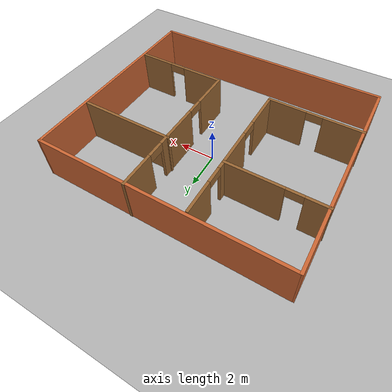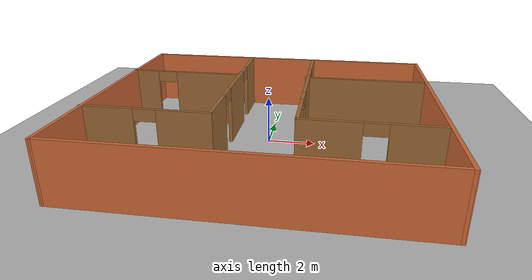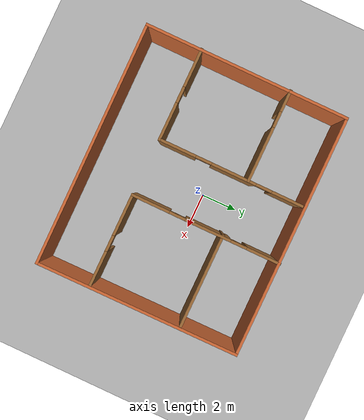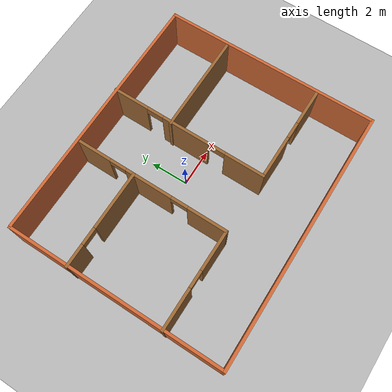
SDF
<sdf version="1.8">
 <world name="default">
  <physics type="ode">
   <real_time_update_rate>1000.0</real_time_update_rate>
   <max_step_size>0.001</max_step_size>
   <real_time_factor>1</real_time_factor>
   <ode>
    <solver>
     <type>quick</type>
     <iters>150</iters>
     <precon_iters>0</precon_iters>
     <sor>1.400000</sor>
     <use_dynamic_moi_rescaling>1</use_dynamic_moi_rescaling>
    </solver>
    <constraints>
     <cfm>0.00001</cfm>
     <erp>0.2</erp>
     <contact_max_correcting_vel>2000.000000</contact_max_correcting_vel>
     <contact_surface_layer>0.01000</contact_surface_layer>
    </constraints>
   </ode>
  </physics>
  <plugin filename="gz-sim-physics-system" name="gz::sim::systems::Physics"/>
  <plugin filename="gz-sim-user-commands-system" name="gz::sim::systems::UserCommands"/>
  <plugin filename="gz-sim-scene-broadcaster-system" name="gz::sim::systems::SceneBroadcaster"/>
  <plugin filename="gz-sim-sensors-system" name="gz::sim::systems::Sensors">
   <render_engine>ogre2</render_engine>
  </plugin>
  <plugin filename="gz-sim-imu-system" name="gz::sim::systems::Imu"/>
  <model name="ground_plane">
   <static>true</static>
   <link name="link">
    <collision name="collision">
     <geometry><plane><normal>0 0 1</normal><size>100 100</size></plane></geometry>
     <surface><friction><ode><mu>100</mu><mu2>50</mu2></ode></friction></surface>
    </collision>
    <visual name="visual">
     <geometry><plane><normal>0 0 1</normal><size>100 100</size></plane></geometry>
     <material>
      <ambient>0.699999988 0.699999988 0.699999988 1</ambient>
      <diffuse>0.699999988 0.699999988 0.699999988 1</diffuse>
      <specular>0.100000001 0.100000001 0.100000001 1</specular>
     </material>
    </visual>
    <inertial>
     <mass>1</mass>
     <inertia><ixx>1</ixx><ixy>0</ixy><ixz>0</ixz><iyy>1</iyy><iyz>0</iyz><izz>1</izz></inertia>
    </inertial>
   </link>
  </model>
  <model name="map_frame">
   <static>true</static>
   <link name="link">
    <collision name="collision"><geometry><box><size>0.001 0.001 0.001</size></box></geometry></collision>
    <visual name="visual">
     <geometry><box><size>0.001 0.001 0.001</size></box></geometry>
     <material><ambient>0 0 0 0</ambient><diffuse>0 0 0 0</diffuse><specular>0 0 0 0</specular></material>
    </visual>
    <inertial>
     <mass>1</mass>
     <inertia><ixx>1</ixx><ixy>0</ixy><ixz>0</ixz><iyy>1</iyy><iyz>0</iyz><izz>1</izz></inertia>
    </inertial>
   </link>
  </model>
  <model name="my_floor">
   <static>true</static>
   <pose>0.022322999313473701 -0.6937289834022522 0 0 0 -1.4432900378918219e-15</pose>
   <link name="Wall_0">
    <collision name="Wall_0_Collision">
     <geometry><box><size>11.5 0.14999999999999999 2.5</size></box></geometry>
     <pose>0 0 1.25 0 0 0</pose>
    </collision>
    <visual name="Wall_0_Visual">
     <pose>0 0 1.25 0 0 0</pose>
     <geometry><box><size>11.5 0.14999999999999999 2.5</size></box></geometry>
     <material>
      <ambient>0.800000012 0.400000006 0.200000003 1</ambient>
      <diffuse>0.800000012 0.400000006 0.200000003 1</diffuse>
      <specular>0.200000003 0.200000003 0.200000003 1</specular>
     </material>
    </visual>
    <pose>-6.73752 -0.018817 0 0 0 -1.5708</pose>
    <inertial>
     <mass>1</mass>
     <inertia><ixx>1</ixx><ixy>0</ixy><ixz>0</ixz><iyy>1</iyy><iyz>0</iyz><izz>1</izz></inertia>
    </inertial>
   </link>
   <link name="Wall_10">
    <pose>-4.2244700000000037 2.4357900000000021 0 0 0 1.4432899320127037e-15</pose>
    <visual name="Wall_10_Visual_0">
     <pose>-2.0079600000000002 0 1.25 0 0 0</pose>
     <geometry><box><size>1.2340899999999999 0.14999999999999999 2.5</size></box></geometry>
     <material>
      <ambient>0.600000024 0.400000006 0.200000003 1</ambient>
      <diffuse>0.600000024 0.400000006 0.200000003 1</diffuse>
      <specular>0.100000001 0.100000001 0.100000001 1</specular>
     </material>
    </visual>
    <collision name="Wall_10_Collision_0">
     <geometry><box><size>1.2340899999999999 0.14999999999999999 2.5</size></box></geometry>
     <pose>-2.0079600000000002 0 1.25 0 0 0</pose>
    </collision>
    <visual name="Wall_10_Visual_1">
     <pose>1.06704 0 1.25 0 0 0</pose>
     <geometry><box><size>3.11592 0.14999999999999999 2.5</size></box></geometry>
     <material>
      <ambient>0.600000024 0.400000006 0.200000003 1</ambient>
      <diffuse>0.600000024 0.400000006 0.200000003 1</diffuse>
      <specular>0.100000001 0.100000001 0.100000001 1</specular>
     </material>
    </visual>
    <collision name="Wall_10_Collision_1">
     <geometry><box><size>3.11592 0.14999999999999999 2.5</size></box></geometry>
     <pose>1.06704 0 1.25 0 0 0</pose>
    </collision>
    <visual name="Wall_10_Visual_2">
     <pose>-0.94091499999999995 0 2.25 0 0 0</pose>
     <geometry><box><size>0.90000000000000002 0.14999999999999999 0.5</size></box></geometry>
     <material>
      <ambient>0.600000024 0.400000006 0.200000003 1</ambient>
      <diffuse>0.600000024 0.400000006 0.200000003 1</diffuse>
      <specular>0.100000001 0.100000001 0.100000001 1</specular>
     </material>
    </visual>
    <collision name="Wall_10_Collision_2">
     <geometry><box><size>0.90000000000000002 0.14999999999999999 0.5</size></box></geometry>
     <pose>-0.94091499999999995 0 2.25 0 0 0</pose>
    </collision>
    <inertial>
     <mass>1</mass>
     <inertia><ixx>1</ixx><ixy>0</ixy><ixz>0</ixz><iyy>1</iyy><iyz>0</iyz><izz>1</izz></inertia>
    </inertial>
   </link>
   <link name="Wall_12">
    <pose>1.5123199999999981 1.5191900000000107 0 0 0 -1.5707999999999993</pose>
    <visual name="Wall_12_Visual_0">
     <pose>-3.2809699999999999 0 1.25 0 0 0</pose>
     <geometry><box><size>1.9380599999999999 0.14999999999999999 2.5</size></box></geometry>
     <material>
      <ambient>0.600000024 0.400000006 0.200000003 1</ambient>
      <diffuse>0.600000024 0.400000006 0.200000003 1</diffuse>
      <specular>0.100000001 0.100000001 0.100000001 1</specular>
     </material>
    </visual>
    <collision name="Wall_12_Collision_0">
     <geometry><box><size>1.9380599999999999 0.14999999999999999 2.5</size></box></geometry>
     <pose>-3.2809699999999999 0 1.25 0 0 0</pose>
    </collision>
    <visual name="Wall_12_Visual_1">
     <pose>-0.112058 0 1.25 0 0 0</pose>
     <geometry><box><size>2.5997599999999998 0.14999999999999999 2.5</size></box></geometry>
     <material>
      <ambient>0.600000024 0.400000006 0.200000003 1</ambient>
      <diffuse>0.600000024 0.400000006 0.200000003 1</diffuse>
      <specular>0.100000001 0.100000001 0.100000001 1</specular>
     </material>
    </visual>
    <collision name="Wall_12_Collision_1">
     <geometry><box><size>2.5997599999999998 0.14999999999999999 2.5</size></box></geometry>
     <pose>-0.112058 0 1.25 0 0 0</pose>
    </collision>
    <visual name="Wall_12_Visual_2">
     <pose>3.1689099999999999 0 1.25 0 0 0</pose>
     <geometry><box><size>2.1621800000000002 0.14999999999999999 2.5</size></box></geometry>
     <material>
      <ambient>0.600000024 0.400000006 0.200000003 1</ambient>
      <diffuse>0.600000024 0.400000006 0.200000003 1</diffuse>
      <specular>0.100000001 0.100000001 0.100000001 1</specular>
     </material>
    </visual>
    <collision name="Wall_12_Collision_2">
     <geometry><box><size>2.1621800000000002 0.14999999999999999 2.5</size></box></geometry>
     <pose>3.1689099999999999 0 1.25 0 0 0</pose>
    </collision>
    <visual name="Wall_12_Visual_3">
     <pose>-1.8619399999999999 0 2.25 0 0 0</pose>
     <geometry><box><size>0.90000000000000002 0.14999999999999999 0.5</size></box></geometry>
     <material>
      <ambient>0.600000024 0.400000006 0.200000003 1</ambient>
      <diffuse>0.600000024 0.400000006 0.200000003 1</diffuse>
      <specular>0.100000001 0.100000001 0.100000001 1</specular>
     </material>
    </visual>
    <collision name="Wall_12_Collision_3">
     <geometry><box><size>0.90000000000000002 0.14999999999999999 0.5</size></box></geometry>
     <pose>-1.8619399999999999 0 2.25 0 0 0</pose>
    </collision>
    <visual name="Wall_12_Visual_4">
     <pose>1.6378200000000001 0 2.25 0 0 0</pose>
     <geometry><box><size>0.90000000000000002 0.14999999999999999 0.5</size></box></geometry>
     <material>
      <ambient>0.600000024 0.400000006 0.200000003 1</ambient>
      <diffuse>0.600000024 0.400000006 0.200000003 1</diffuse>
      <specular>0.100000001 0.100000001 0.100000001 1</specular>
     </material>
    </visual>
    <collision name="Wall_12_Collision_4">
     <geometry><box><size>0.90000000000000002 0.14999999999999999 0.5</size></box></geometry>
     <pose>1.6378200000000001 0 2.25 0 0 0</pose>
    </collision>
    <inertial>
     <mass>1</mass>
     <inertia><ixx>1</ixx><ixy>0</ixy><ixz>0</ixz><iyy>1</iyy><iyz>0</iyz><izz>1</izz></inertia>
    </inertial>
   </link>
   <link name="Wall_13">
    <pose>4.0623300000000038 -2.6558199999999852 0 0 0 1.4432899320127037e-15</pose>
    <visual name="Wall_13_Visual_0">
     <pose>-1.43472 0 1.25 0 0 0</pose>
     <geometry><box><size>2.38056 0.14999999999999999 2.5</size></box></geometry>
     <material>
      <ambient>0.600000024 0.400000006 0.200000003 1</ambient>
      <diffuse>0.600000024 0.400000006 0.200000003 1</diffuse>
      <specular>0.100000001 0.100000001 0.100000001 1</specular>
     </material>
    </visual>
    <collision name="Wall_13_Collision_0">
     <geometry><box><size>2.38056 0.14999999999999999 2.5</size></box></geometry>
     <pose>-1.43472 0 1.25 0 0 0</pose>
    </collision>
    <visual name="Wall_13_Visual_1">
     <pose>1.64028 0 1.25 0 0 0</pose>
     <geometry><box><size>1.9694400000000001 0.14999999999999999 2.5</size></box></geometry>
     <material>
      <ambient>0.600000024 0.400000006 0.200000003 1</ambient>
      <diffuse>0.600000024 0.400000006 0.200000003 1</diffuse>
      <specular>0.100000001 0.100000001 0.100000001 1</specular>
     </material>
    </visual>
    <collision name="Wall_13_Collision_1">
     <geometry><box><size>1.9694400000000001 0.14999999999999999 2.5</size></box></geometry>
     <pose>1.64028 0 1.25 0 0 0</pose>
    </collision>
    <visual name="Wall_13_Visual_2">
     <pose>0.20555899999999999 0 2.25 0 0 0</pose>
     <geometry><box><size>0.90000000000000002 0.14999999999999999 0.5</size></box></geometry>
     <material>
      <ambient>0.600000024 0.400000006 0.200000003 1</ambient>
      <diffuse>0.600000024 0.400000006 0.200000003 1</diffuse>
      <specular>0.100000001 0.100000001 0.100000001 1</specular>
     </material>
    </visual>
    <collision name="Wall_13_Collision_2">
     <geometry><box><size>0.90000000000000002 0.14999999999999999 0.5</size></box></geometry>
     <pose>0.20555899999999999 0 2.25 0 0 0</pose>
    </collision>
    <inertial>
     <mass>1</mass>
     <inertia><ixx>1</ixx><ixy>0</ixy><ixz>0</ixz><iyy>1</iyy><iyz>0</iyz><izz>1</izz></inertia>
    </inertial>
   </link>
   <link name="Wall_15">
    <collision name="Wall_15_Collision">
     <geometry><box><size>5.25 0.14999999999999999 2.5</size></box></geometry>
     <pose>0 0 1.25 0 0 0</pose>
    </collision>
    <visual name="Wall_15_Visual">
     <pose>0 0 1.25 0 0 0</pose>
     <geometry><box><size>5.25 0.14999999999999999 2.5</size></box></geometry>
     <material>
      <ambient>0.600000024 0.400000006 0.200000003 1</ambient>
      <diffuse>0.600000024 0.400000006 0.200000003 1</diffuse>
      <specular>0.100000001 0.100000001 0.100000001 1</specular>
     </material>
    </visual>
    <pose>4.0019799999999961 2.4559000000000144 0 0 0 1.4432899320127037e-15</pose>
    <inertial>
     <mass>1</mass>
     <inertia><ixx>1</ixx><ixy>0</ixy><ixz>0</ixz><iyy>1</iyy><iyz>0</iyz><izz>1</izz></inertia>
    </inertial>
   </link>
   <link name="Wall_2">
    <collision name="Wall_2_Collision">
     <geometry><box><size>13.6616 0.14999999999999999 2.5</size></box></geometry>
     <pose>0 0 1.25 0 0 0</pose>
    </collision>
    <visual name="Wall_2_Visual">
     <pose>0 0 1.25 0 0 0</pose>
     <geometry><box><size>13.6616 0.14999999999999999 2.5</size></box></geometry>
     <material>
      <ambient>0.800000012 0.400000006 0.200000003 1</ambient>
      <diffuse>0.800000012 0.400000006 0.200000003 1</diffuse>
      <specular>0.200000003 0.200000003 0.200000003 1</specular>
     </material>
    </visual>
    <pose>0.018214000000008172 -5.6604899999999922 0 0 0 0.0049330000000014397</pose>
    <inertial>
     <mass>1</mass>
     <inertia><ixx>1</ixx><ixy>0</ixy><ixz>0</ixz><iyy>1</iyy><iyz>0</iyz><izz>1</izz></inertia>
    </inertial>
   </link>
   <link name="Wall_3">
    <collision name="Wall_3_Collision">
     <geometry><box><size>11.446 0.14999999999999999 2.5</size></box></geometry>
     <pose>0 0 1.25 0 0 0</pose>
    </collision>
    <visual name="Wall_3_Visual">
     <pose>0 0 1.25 0 0 0</pose>
     <geometry><box><size>11.446 0.14999999999999999 2.5</size></box></geometry>
     <material>
      <ambient>0.800000012 0.400000006 0.200000003 1</ambient>
      <diffuse>0.800000012 0.400000006 0.200000003 1</diffuse>
      <specular>0.200000003 0.200000003 0.200000003 1</specular>
     </material>
    </visual>
    <pose>6.7345100000000011 0.020605000000018303 0 0 0 1.577780000000002</pose>
    <inertial>
     <mass>1</mass>
     <inertia><ixx>1</ixx><ixy>0</ixy><ixz>0</ixz><iyy>1</iyy><iyz>0</iyz><izz>1</izz></inertia>
    </inertial>
   </link>
   <link name="Wall_4">
    <collision name="Wall_4_Collision">
     <geometry><box><size>13.5 0.14999999999999999 2.5</size></box></geometry>
     <pose>0 0 1.25 0 0 0</pose>
    </collision>
    <visual name="Wall_4_Visual">
     <pose>0 0 1.25 0 0 0</pose>
     <geometry><box><size>13.5 0.14999999999999999 2.5</size></box></geometry>
     <material>
      <ambient>0.800000012 0.400000006 0.200000003 1</ambient>
      <diffuse>0.800000012 0.400000006 0.200000003 1</diffuse>
      <specular>0.200000003 0.200000003 0.200000003 1</specular>
     </material>
    </visual>
    <pose>0.020072999999991816 5.6683700000000083 0 0 0 3.1415900000000012</pose>
    <inertial>
     <mass>1</mass>
     <inertia><ixx>1</ixx><ixy>0</ixy><ixz>0</ixz><iyy>1</iyy><iyz>0</iyz><izz>1</izz></inertia>
    </inertial>
   </link>
   <link name="Wall_6">
    <pose>-4.2169399999999966 -2.6123799999999981 0 0 0 1.4432899320127037e-15</pose>
    <visual name="Wall_6_Visual_0">
     <pose>-1.5289900000000001 0 1.25 0 0 0</pose>
     <geometry><box><size>2.1920099999999998 0.14999999999999999 2.5</size></box></geometry>
     <material>
      <ambient>0.600000024 0.400000006 0.200000003 1</ambient>
      <diffuse>0.600000024 0.400000006 0.200000003 1</diffuse>
      <specular>0.100000001 0.100000001 0.100000001 1</specular>
     </material>
    </visual>
    <collision name="Wall_6_Collision_0">
     <geometry><box><size>2.1920099999999998 0.14999999999999999 2.5</size></box></geometry>
     <pose>-1.5289900000000001 0 1.25 0 0 0</pose>
    </collision>
    <visual name="Wall_6_Visual_1">
     <pose>1.5460100000000001 0 1.25 0 0 0</pose>
     <geometry><box><size>2.1579899999999999 0.14999999999999999 2.5</size></box></geometry>
     <material>
      <ambient>0.600000024 0.400000006 0.200000003 1</ambient>
      <diffuse>0.600000024 0.400000006 0.200000003 1</diffuse>
      <specular>0.100000001 0.100000001 0.100000001 1</specular>
     </material>
    </visual>
    <collision name="Wall_6_Collision_1">
     <geometry><box><size>2.1579899999999999 0.14999999999999999 2.5</size></box></geometry>
     <pose>1.5460100000000001 0 1.25 0 0 0</pose>
    </collision>
    <visual name="Wall_6_Visual_2">
     <pose>0.017011999999999999 0 2.25 0 0 0</pose>
     <geometry><box><size>0.90000000000000002 0.14999999999999999 0.5</size></box></geometry>
     <material>
      <ambient>0.600000024 0.400000006 0.200000003 1</ambient>
      <diffuse>0.600000024 0.400000006 0.200000003 1</diffuse>
      <specular>0.100000001 0.100000001 0.100000001 1</specular>
     </material>
    </visual>
    <collision name="Wall_6_Collision_2">
     <geometry><box><size>0.90000000000000002 0.14999999999999999 0.5</size></box></geometry>
     <pose>0.017011999999999999 0 2.25 0 0 0</pose>
    </collision>
    <inertial>
     <mass>1</mass>
     <inertia><ixx>1</ixx><ixy>0</ixy><ixz>0</ixz><iyy>1</iyy><iyz>0</iyz><izz>1</izz></inertia>
    </inertial>
   </link>
   <link name="Wall_8">
    <pose>-1.6669400000000021 1.4376200000000061 0 0 0 1.5708000000000026</pose>
    <visual name="Wall_8_Visual_0">
     <pose>-3.0555699999999999 0 1.25 0 0 0</pose>
     <geometry><box><size>2.1388600000000002 0.14999999999999999 2.5</size></box></geometry>
     <material>
      <ambient>0.600000024 0.400000006 0.200000003 1</ambient>
      <diffuse>0.600000024 0.400000006 0.200000003 1</diffuse>
      <specular>0.100000001 0.100000001 0.100000001 1</specular>
     </material>
    </visual>
    <collision name="Wall_8_Collision_0">
     <geometry><box><size>2.1388600000000002 0.14999999999999999 2.5</size></box></geometry>
     <pose>-3.0555699999999999 0 1.25 0 0 0</pose>
    </collision>
    <visual name="Wall_8_Visual_1">
     <pose>0.173514 0 1.25 0 0 0</pose>
     <geometry><box><size>2.5193099999999999 0.14999999999999999 2.5</size></box></geometry>
     <material>
      <ambient>0.600000024 0.400000006 0.200000003 1</ambient>
      <diffuse>0.600000024 0.400000006 0.200000003 1</diffuse>
      <specular>0.100000001 0.100000001 0.100000001 1</specular>
     </material>
    </visual>
    <collision name="Wall_8_Collision_1">
     <geometry><box><size>2.5193099999999999 0.14999999999999999 2.5</size></box></geometry>
     <pose>0.173514 0 1.25 0 0 0</pose>
    </collision>
    <visual name="Wall_8_Visual_2">
     <pose>3.2290800000000002 0 1.25 0 0 0</pose>
     <geometry><box><size>1.79183 0.14999999999999999 2.5</size></box></geometry>
     <material>
      <ambient>0.600000024 0.400000006 0.200000003 1</ambient>
      <diffuse>0.600000024 0.400000006 0.200000003 1</diffuse>
      <specular>0.100000001 0.100000001 0.100000001 1</specular>
     </material>
    </visual>
    <collision name="Wall_8_Collision_2">
     <geometry><box><size>1.79183 0.14999999999999999 2.5</size></box></geometry>
     <pose>3.2290800000000002 0 1.25 0 0 0</pose>
    </collision>
    <visual name="Wall_8_Visual_3">
     <pose>-1.5361400000000001 0 2.25 0 0 0</pose>
     <geometry><box><size>0.90000000000000002 0.14999999999999999 0.5</size></box></geometry>
     <material>
      <ambient>0.600000024 0.400000006 0.200000003 1</ambient>
      <diffuse>0.600000024 0.400000006 0.200000003 1</diffuse>
      <specular>0.100000001 0.100000001 0.100000001 1</specular>
     </material>
    </visual>
    <collision name="Wall_8_Collision_3">
     <geometry><box><size>0.90000000000000002 0.14999999999999999 0.5</size></box></geometry>
     <pose>-1.5361400000000001 0 2.25 0 0 0</pose>
    </collision>
    <visual name="Wall_8_Visual_4">
     <pose>1.88317 0 2.25 0 0 0</pose>
     <geometry><box><size>0.90000000000000002 0.14999999999999999 0.5</size></box></geometry>
     <material>
      <ambient>0.600000024 0.400000006 0.200000003 1</ambient>
      <diffuse>0.600000024 0.400000006 0.200000003 1</diffuse>
      <specular>0.100000001 0.100000001 0.100000001 1</specular>
     </material>
    </visual>
    <collision name="Wall_8_Collision_4">
     <geometry><box><size>0.90000000000000002 0.14999999999999999 0.5</size></box></geometry>
     <pose>1.88317 0 2.25 0 0 0</pose>
    </collision>
    <inertial>
     <mass>1</mass>
     <inertia><ixx>1</ixx><ixy>0</ixy><ixz>0</ixz><iyy>1</iyy><iyz>0</iyz><izz>1</izz></inertia>
    </inertial>
   </link>
  </model>
  <light name="sun" type="directional">
   <pose>0 0 10 0 0 0</pose>
   <intensity>1</intensity>
   <direction>-0.5 0.10000000000000001 -0.90000000000000002</direction>
   <diffuse>0.800000012 0.800000012 0.800000012 1</diffuse>
   <specular>0.200000003 0.200000003 0.200000003 1</specular>
   <attenuation>
    <range>1000</range>
    <linear>0.01</linear>
    <constant>0.90000000000000002</constant>
    <quadratic>0.001</quadratic>
   </attenuation>
   <spot><inner_angle>0</inner_angle><outer_angle>0</outer_angle><falloff>0</falloff></spot>
  </light>
 </world>
</sdf>
